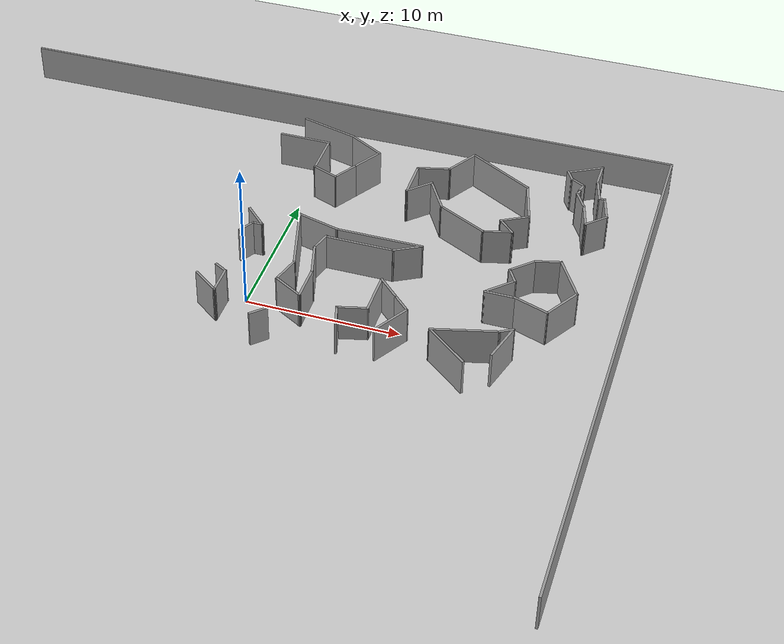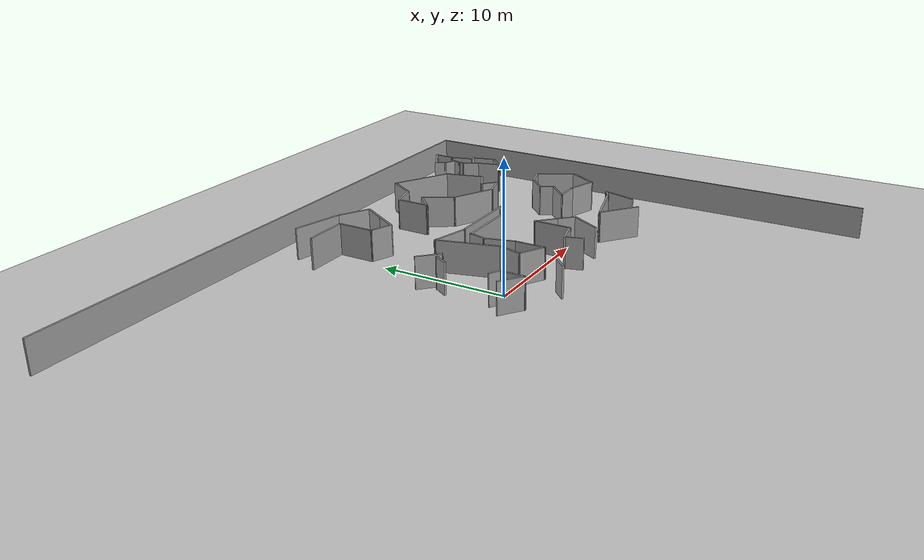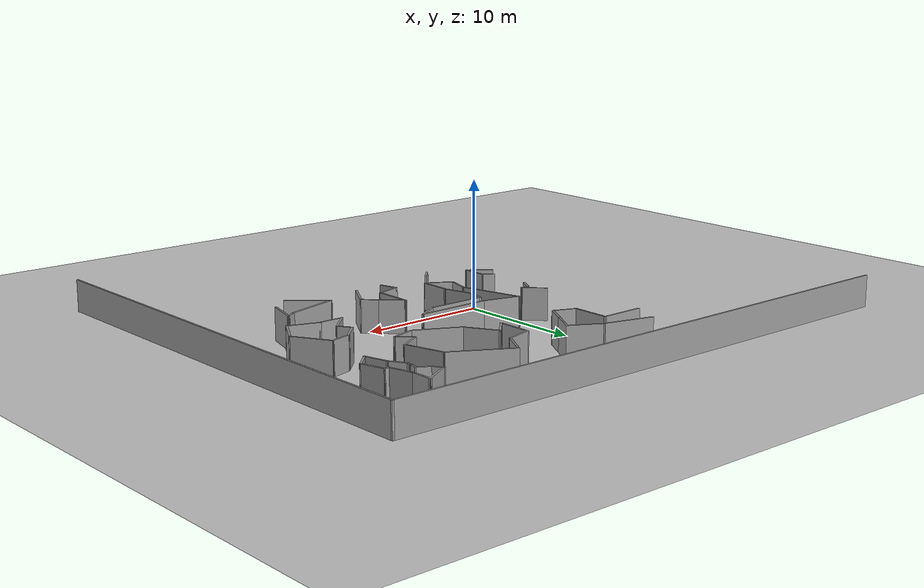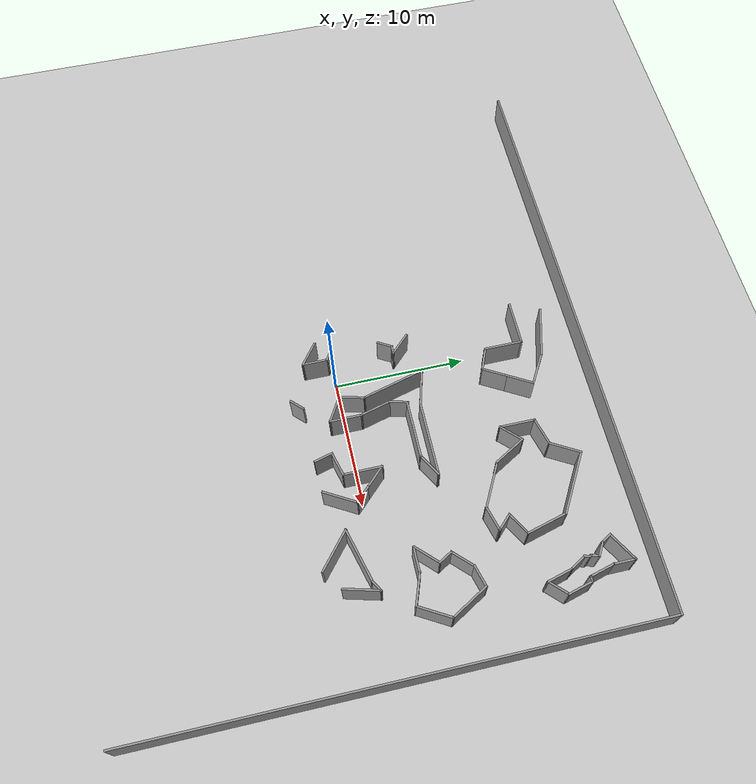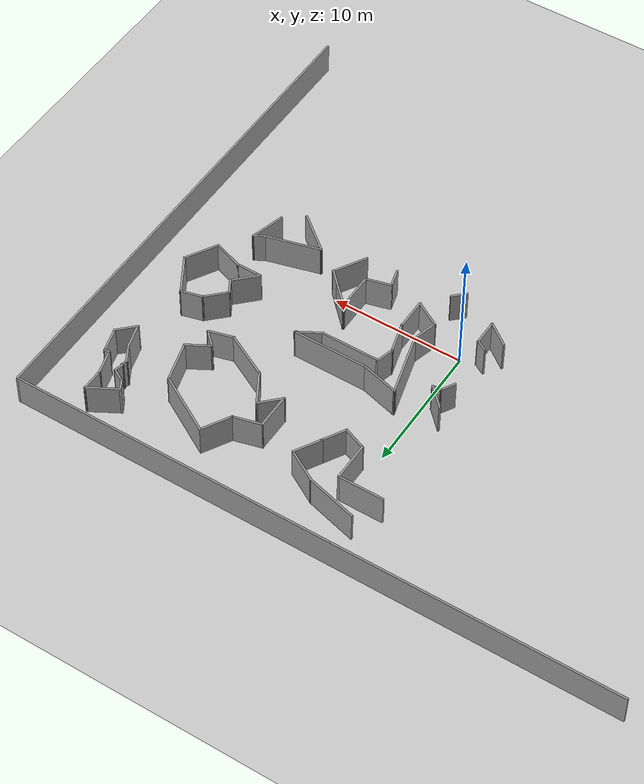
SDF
<sdf version="1.6">
 <world name="default">
  <model name="ground_plane">
   <static>1</static>
   <link name="link">
    <collision name="collision">
     <geometry><plane><normal>0 0 1</normal><size>100 100</size></plane></geometry>
     <surface><friction><ode><mu>100</mu><mu2>50</mu2></ode></friction></surface>
    </collision>
    <visual name="visual">
     <cast_shadows>0</cast_shadows>
     <geometry><plane><normal>0 0 1</normal><size>100 100</size></plane></geometry>
     <material>
      <script><uri>file://media/materials/scripts/gazebo.material</uri><name>Gazebo/Grey</name></script>
     </material>
    </visual>
   </link>
  </model>
  <model name="square_1">
   <pose>0.009703 -0.009719 0 0 -0 0</pose>
   <link name="Wall_0">
    <collision name="Wall_0_Collision">
     <geometry><box><size>2 0.15 2.5</size></box></geometry>
     <pose>0 0 1.25 0 -0 0</pose>
    </collision>
    <visual name="Wall_0_Visual">
     <pose>0 0 1.25 0 -0 0</pose>
     <geometry><box><size>2 0.15 2.5</size></box></geometry>
     <material>
      <script><uri>file://media/materials/scripts/gazebo.material</uri><name>Gazebo/Grey</name></script>
      <ambient>1 1 1 1</ambient>
     </material>
     <meta><layer>0</layer></meta>
    </visual>
    <pose>-1.15789 -1.26056 0 0 -0 1.5708</pose>
   </link>
   <link name="Wall_1">
    <collision name="Wall_1_Collision">
     <geometry><box><size>1 0.15 2.5</size></box></geometry>
     <pose>0 0 1.25 0 -0 0</pose>
    </collision>
    <visual name="Wall_1_Visual">
     <pose>0 0 1.25 0 -0 0</pose>
     <geometry><box><size>1 0.15 2.5</size></box></geometry>
     <material>
      <script><uri>file://media/materials/scripts/gazebo.material</uri><name>Gazebo/Grey</name></script>
      <ambient>1 1 1 1</ambient>
     </material>
     <meta><layer>0</layer></meta>
    </visual>
    <pose>-1.52595 -0.123056 0 0 -0 2.61799</pose>
   </link>
   <link name="Wall_100">
    <collision name="Wall_100_Collision">
     <geometry><box><size>2.75 0.15 2.5</size></box></geometry>
     <pose>0 0 1.25 0 -0 0</pose>
    </collision>
    <visual name="Wall_100_Visual">
     <pose>0 0 1.25 0 -0 0</pose>
     <geometry><box><size>2.75 0.15 2.5</size></box></geometry>
     <material>
      <script><uri>file://media/materials/scripts/gazebo.material</uri><name>Gazebo/Grey</name></script>
      <ambient>1 1 1 1</ambient>
     </material>
     <meta><layer>0</layer></meta>
    </visual>
    <pose>3.07498 15.0231 0 0 0 -0.523599</pose>
   </link>
   <link name="Wall_101">
    <collision name="Wall_101_Collision">
     <geometry><box><size>2.25 0.15 2.5</size></box></geometry>
     <pose>0 0 1.25 0 -0 0</pose>
    </collision>
    <visual name="Wall_101_Visual">
     <pose>0 0 1.25 0 -0 0</pose>
     <geometry><box><size>2.25 0.15 2.5</size></box></geometry>
     <material>
      <script><uri>file://media/materials/scripts/gazebo.material</uri><name>Gazebo/Grey</name></script>
      <ambient>1 1 1 1</ambient>
     </material>
     <meta><layer>0</layer></meta>
    </visual>
    <pose>3.67582 13.4637 0 0 0 -2.0944</pose>
   </link>
   <link name="Wall_102">
    <collision name="Wall_102_Collision">
     <geometry><box><size>2 0.15 2.5</size></box></geometry>
     <pose>0 0 1.25 0 -0 0</pose>
    </collision>
    <visual name="Wall_102_Visual">
     <pose>0 0 1.25 0 -0 0</pose>
     <geometry><box><size>2 0.15 2.5</size></box></geometry>
     <material>
      <script><uri>file://media/materials/scripts/gazebo.material</uri><name>Gazebo/Grey</name></script>
      <ambient>1 1 1 1</ambient>
     </material>
     <meta><layer>0</layer></meta>
    </visual>
    <pose>2.68831 11.7533 0 0 0 -2.0944</pose>
   </link>
   <link name="Wall_103">
    <collision name="Wall_103_Collision">
     <geometry><box><size>1.902 0.15 2.5</size></box></geometry>
     <pose>0 0 1.25 0 -0 0</pose>
    </collision>
    <visual name="Wall_103_Visual">
     <pose>0 0 1.25 0 -0 0</pose>
     <geometry><box><size>1.902 0.15 2.5</size></box></geometry>
     <material>
      <script><uri>file://media/materials/scripts/gazebo.material</uri><name>Gazebo/Grey</name></script>
      <ambient>1 1 1 1</ambient>
     </material>
     <meta><layer>0</layer></meta>
    </visual>
    <pose>1.4144 11.2824 0 0 -0 2.75519</pose>
   </link>
   <link name="Wall_151">
    <collision name="Wall_151_Collision">
     <geometry><box><size>2.75 0.15 2.5</size></box></geometry>
     <pose>0 0 1.25 0 -0 0</pose>
    </collision>
    <visual name="Wall_151_Visual">
     <pose>0 0 1.25 0 -0 0</pose>
     <geometry><box><size>2.75 0.15 2.5</size></box></geometry>
     <material>
      <script><uri>file://media/materials/scripts/gazebo.material</uri><name>Gazebo/Grey</name></script>
      <ambient>1 1 1 1</ambient>
     </material>
     <meta><layer>0</layer></meta>
    </visual>
    <pose>9.09595 11.1606 0 0 -0 2.0944</pose>
   </link>
   <link name="Wall_152">
    <collision name="Wall_152_Collision">
     <geometry><box><size>2 0.15 2.5</size></box></geometry>
     <pose>0 0 1.25 0 -0 0</pose>
    </collision>
    <visual name="Wall_152_Visual">
     <pose>0 0 1.25 0 -0 0</pose>
     <geometry><box><size>2 0.15 2.5</size></box></geometry>
     <material>
      <script><uri>file://media/materials/scripts/gazebo.material</uri><name>Gazebo/Grey</name></script>
      <ambient>1 1 1 1</ambient>
     </material>
     <meta><layer>0</layer></meta>
    </visual>
    <pose>7.79188 11.6323 0 0 0 -2.35619</pose>
   </link>
   <link name="Wall_153">
    <collision name="Wall_153_Collision">
     <geometry><box><size>2.75 0.15 2.5</size></box></geometry>
     <pose>0 0 1.25 0 -0 0</pose>
    </collision>
    <visual name="Wall_153_Visual">
     <pose>0 0 1.25 0 -0 0</pose>
     <geometry><box><size>2.75 0.15 2.5</size></box></geometry>
     <material>
      <script><uri>file://media/materials/scripts/gazebo.material</uri><name>Gazebo/Grey</name></script>
      <ambient>1 1 1 1</ambient>
     </material>
     <meta><layer>0</layer></meta>
    </visual>
    <pose>7.1378 12.2783 0 0 -0 1.5708</pose>
   </link>
   <link name="Wall_154">
    <collision name="Wall_154_Collision">
     <geometry><box><size>2.25 0.15 2.5</size></box></geometry>
     <pose>0 0 1.25 0 -0 0</pose>
    </collision>
    <visual name="Wall_154_Visual">
     <pose>0 0 1.25 0 -0 0</pose>
     <geometry><box><size>2.25 0.15 2.5</size></box></geometry>
     <material>
      <script><uri>file://media/materials/scripts/gazebo.material</uri><name>Gazebo/Grey</name></script>
      <ambient>1 1 1 1</ambient>
     </material>
     <meta><layer>0</layer></meta>
    </visual>
    <pose>8.15203 13.85 0 0 -0 0.261799</pose>
   </link>
   <link name="Wall_155">
    <collision name="Wall_155_Collision">
     <geometry><box><size>2.5 0.15 2.5</size></box></geometry>
     <pose>0 0 1.25 0 -0 0</pose>
    </collision>
    <visual name="Wall_155_Visual">
     <pose>0 0 1.25 0 -0 0</pose>
     <geometry><box><size>2.5 0.15 2.5</size></box></geometry>
     <material>
      <script><uri>file://media/materials/scripts/gazebo.material</uri><name>Gazebo/Grey</name></script>
      <ambient>1 1 1 1</ambient>
     </material>
     <meta><layer>0</layer></meta>
    </visual>
    <pose>9.75375 15.1394 0 0 -0 1.0472</pose>
   </link>
   <link name="Wall_156">
    <collision name="Wall_156_Collision">
     <geometry><box><size>5 0.15 2.5</size></box></geometry>
     <pose>0 0 1.25 0 -0 0</pose>
    </collision>
    <visual name="Wall_156_Visual">
     <pose>0 0 1.25 0 -0 0</pose>
     <geometry><box><size>5 0.15 2.5</size></box></geometry>
     <material>
      <script><uri>file://media/materials/scripts/gazebo.material</uri><name>Gazebo/Grey</name></script>
      <ambient>1 1 1 1</ambient>
     </material>
     <meta><layer>0</layer></meta>
    </visual>
    <pose>12.4414 14.9445 0 0 0 -0.523599</pose>
   </link>
   <link name="Wall_157">
    <collision name="Wall_157_Collision">
     <geometry><box><size>3.25 0.15 2.5</size></box></geometry>
     <pose>0 0 1.25 0 -0 0</pose>
    </collision>
    <visual name="Wall_157_Visual">
     <pose>0 0 1.25 0 -0 0</pose>
     <geometry><box><size>3.25 0.15 2.5</size></box></geometry>
     <material>
      <script><uri>file://media/materials/scripts/gazebo.material</uri><name>Gazebo/Grey</name></script>
      <ambient>1 1 1 1</ambient>
     </material>
     <meta><layer>0</layer></meta>
    </visual>
    <pose>14.9426 12.2348 0 0 0 -1.309</pose>
   </link>
   <link name="Wall_158">
    <collision name="Wall_158_Collision">
     <geometry><box><size>2 0.15 2.5</size></box></geometry>
     <pose>0 0 1.25 0 -0 0</pose>
    </collision>
    <visual name="Wall_158_Visual">
     <pose>0 0 1.25 0 -0 0</pose>
     <geometry><box><size>2 0.15 2.5</size></box></geometry>
     <material>
      <script><uri>file://media/materials/scripts/gazebo.material</uri><name>Gazebo/Grey</name></script>
      <ambient>1 1 1 1</ambient>
     </material>
     <meta><layer>0</layer></meta>
    </visual>
    <pose>14.5427 10.2751 0 0 0 -2.61799</pose>
   </link>
   <link name="Wall_159">
    <collision name="Wall_159_Collision">
     <geometry><box><size>1.5 0.15 2.5</size></box></geometry>
     <pose>0 0 1.25 0 -0 0</pose>
    </collision>
    <visual name="Wall_159_Visual">
     <pose>0 0 1.25 0 -0 0</pose>
     <geometry><box><size>1.5 0.15 2.5</size></box></geometry>
     <material>
      <script><uri>file://media/materials/scripts/gazebo.material</uri><name>Gazebo/Grey</name></script>
      <ambient>1 1 1 1</ambient>
     </material>
     <meta><layer>0</layer></meta>
    </visual>
    <pose>14.219 9.33529 0 0 0 -0.785398</pose>
   </link>
   <link name="Wall_160">
    <collision name="Wall_160_Collision">
     <geometry><box><size>2 0.15 2.5</size></box></geometry>
     <pose>0 0 1.25 0 -0 0</pose>
    </collision>
    <visual name="Wall_160_Visual">
     <pose>0 0 1.25 0 -0 0</pose>
     <geometry><box><size>2 0.15 2.5</size></box></geometry>
     <material>
      <script><uri>file://media/materials/scripts/gazebo.material</uri><name>Gazebo/Grey</name></script>
      <ambient>1 1 1 1</ambient>
     </material>
     <meta><layer>0</layer></meta>
    </visual>
    <pose>13.8028 8.61858 0 0 0 -2.87979</pose>
   </link>
   <link name="Wall_161">
    <collision name="Wall_161_Collision">
     <geometry><box><size>3.72039 0.15 2.5</size></box></geometry>
     <pose>0 0 1.25 0 -0 0</pose>
    </collision>
    <visual name="Wall_161_Visual">
     <pose>0 0 1.25 0 -0 0</pose>
     <geometry><box><size>3.72039 0.15 2.5</size></box></geometry>
     <material>
      <script><uri>file://media/materials/scripts/gazebo.material</uri><name>Gazebo/Grey</name></script>
      <ambient>1 1 1 1</ambient>
     </material>
     <meta><layer>0</layer></meta>
    </visual>
    <pose>11.3276 9.20696 0 0 -0 2.65943</pose>
   </link>
   <link name="Wall_163">
    <collision name="Wall_163_Collision">
     <geometry><box><size>2.25 0.15 2.5</size></box></geometry>
     <pose>0 0 1.25 0 -0 0</pose>
    </collision>
    <visual name="Wall_163_Visual">
     <pose>0 0 1.25 0 -0 0</pose>
     <geometry><box><size>2.25 0.15 2.5</size></box></geometry>
     <material>
      <script><uri>file://media/materials/scripts/gazebo.material</uri><name>Gazebo/Grey</name></script>
      <ambient>1 1 1 1</ambient>
     </material>
     <meta><layer>0</layer></meta>
    </visual>
    <pose>15.2622 3.49521 0 0 -0 0.785398</pose>
   </link>
   <link name="Wall_164">
    <collision name="Wall_164_Collision">
     <geometry><box><size>1.25 0.15 2.5</size></box></geometry>
     <pose>0 0 1.25 0 -0 0</pose>
    </collision>
    <visual name="Wall_164_Visual">
     <pose>0 0 1.25 0 -0 0</pose>
     <geometry><box><size>1.25 0.15 2.5</size></box></geometry>
     <material>
      <script><uri>file://media/materials/scripts/gazebo.material</uri><name>Gazebo/Grey</name></script>
      <ambient>1 1 1 1</ambient>
     </material>
     <meta><layer>0</layer></meta>
    </visual>
    <pose>15.7296 4.71399 0 0 -0 2.0944</pose>
   </link>
   <link name="Wall_165">
    <collision name="Wall_165_Collision">
     <geometry><box><size>2 0.15 2.5</size></box></geometry>
     <pose>0 0 1.25 0 -0 0</pose>
    </collision>
    <visual name="Wall_165_Visual">
     <pose>0 0 1.25 0 -0 0</pose>
     <geometry><box><size>2 0.15 2.5</size></box></geometry>
     <material>
      <script><uri>file://media/materials/scripts/gazebo.material</uri><name>Gazebo/Grey</name></script>
      <ambient>1 1 1 1</ambient>
     </material>
     <meta><layer>0</layer></meta>
    </visual>
    <pose>16.1087 5.84438 0 0 -0 0.785398</pose>
   </link>
   <link name="Wall_166">
    <collision name="Wall_166_Collision">
     <geometry><box><size>1.75 0.15 2.5</size></box></geometry>
     <pose>0 0 1.25 0 -0 0</pose>
    </collision>
    <visual name="Wall_166_Visual">
     <pose>0 0 1.25 0 -0 0</pose>
     <geometry><box><size>1.75 0.15 2.5</size></box></geometry>
     <material>
      <script><uri>file://media/materials/scripts/gazebo.material</uri><name>Gazebo/Grey</name></script>
      <ambient>1 1 1 1</ambient>
     </material>
     <meta><layer>0</layer></meta>
    </visual>
    <pose>17.5355 6.7055 0 0 -0 0.261799</pose>
   </link>
   <link name="Wall_167">
    <collision name="Wall_167_Collision">
     <geometry><box><size>3.25 0.15 2.5</size></box></geometry>
     <pose>0 0 1.25 0 -0 0</pose>
    </collision>
    <visual name="Wall_167_Visual">
     <pose>0 0 1.25 0 -0 0</pose>
     <geometry><box><size>3.25 0.15 2.5</size></box></geometry>
     <material>
      <script><uri>file://media/materials/scripts/gazebo.material</uri><name>Gazebo/Grey</name></script>
      <ambient>1 1 1 1</ambient>
     </material>
     <meta><layer>0</layer></meta>
    </visual>
    <pose>19.0833 5.57022 0 0 0 -1.0472</pose>
   </link>
   <link name="Wall_168">
    <collision name="Wall_168_Collision">
     <geometry><box><size>2.75 0.15 2.5</size></box></geometry>
     <pose>0 0 1.25 0 -0 0</pose>
    </collision>
    <visual name="Wall_168_Visual">
     <pose>0 0 1.25 0 -0 0</pose>
     <geometry><box><size>2.75 0.15 2.5</size></box></geometry>
     <material>
      <script><uri>file://media/materials/scripts/gazebo.material</uri><name>Gazebo/Grey</name></script>
      <ambient>1 1 1 1</ambient>
     </material>
     <meta><layer>0</layer></meta>
    </visual>
    <pose>19.2083 3.10205 0 0 0 -2.0944</pose>
   </link>
   <link name="Wall_169">
    <collision name="Wall_169_Collision">
     <geometry><box><size>2.48434 0.15 2.5</size></box></geometry>
     <pose>0 0 1.25 0 -0 0</pose>
    </collision>
    <visual name="Wall_169_Visual">
     <pose>0 0 1.25 0 -0 0</pose>
     <geometry><box><size>2.48434 0.15 2.5</size></box></geometry>
     <material>
      <script><uri>file://media/materials/scripts/gazebo.material</uri><name>Gazebo/Grey</name></script>
      <ambient>1 1 1 1</ambient>
     </material>
     <meta><layer>0</layer></meta>
    </visual>
    <pose>17.4563 2.36092 0 0 -0 2.8057</pose>
   </link>
   <link name="Wall_170">
    <collision name="Wall_170_Collision">
     <geometry><box><size>1.96502 0.15 2.5</size></box></geometry>
     <pose>0 0 1.25 0 -0 0</pose>
    </collision>
    <visual name="Wall_170_Visual">
     <pose>0 0 1.25 0 -0 0</pose>
     <geometry><box><size>1.96502 0.15 2.5</size></box></geometry>
     <material>
      <script><uri>file://media/materials/scripts/gazebo.material</uri><name>Gazebo/Grey</name></script>
      <ambient>1 1 1 1</ambient>
     </material>
     <meta><layer>0</layer></meta>
    </visual>
    <pose>15.4469 2.72814 0 0 -0 3.14159</pose>
   </link>
   <link name="Wall_175">
    <collision name="Wall_175_Collision">
     <geometry><box><size>4.25 0.15 2.5</size></box></geometry>
     <pose>0 0 1.25 0 -0 0</pose>
    </collision>
    <visual name="Wall_175_Visual">
     <pose>0 0 1.25 0 -0 0</pose>
     <geometry><box><size>4.25 0.15 2.5</size></box></geometry>
     <material>
      <script><uri>file://media/materials/scripts/gazebo.material</uri><name>Gazebo/Grey</name></script>
      <ambient>1 1 1 1</ambient>
     </material>
     <meta><layer>0</layer></meta>
    </visual>
    <pose>14.268 -1.06871 0 0 -0 0.261799</pose>
   </link>
   <link name="Wall_176">
    <collision name="Wall_176_Collision">
     <geometry><box><size>1 0.15 2.5</size></box></geometry>
     <pose>0 0 1.25 0 -0 0</pose>
    </collision>
    <visual name="Wall_176_Visual">
     <pose>0 0 1.25 0 -0 0</pose>
     <geometry><box><size>1 0.15 2.5</size></box></geometry>
     <material>
      <script><uri>file://media/materials/scripts/gazebo.material</uri><name>Gazebo/Grey</name></script>
      <ambient>1 1 1 1</ambient>
     </material>
     <meta><layer>0</layer></meta>
    </visual>
    <pose>16.6162 -0.325631 0 0 -0 0.523599</pose>
   </link>
   <link name="Wall_177">
    <collision name="Wall_177_Collision">
     <geometry><box><size>2.75 0.15 2.5</size></box></geometry>
     <pose>0 0 1.25 0 -0 0</pose>
    </collision>
    <visual name="Wall_177_Visual">
     <pose>0 0 1.25 0 -0 0</pose>
     <geometry><box><size>2.75 0.15 2.5</size></box></geometry>
     <material>
      <script><uri>file://media/materials/scripts/gazebo.material</uri><name>Gazebo/Grey</name></script>
      <ambient>1 1 1 1</ambient>
     </material>
     <meta><layer>0</layer></meta>
    </visual>
    <pose>16.6478 -1.36884 0 0 0 -1.8326</pose>
   </link>
   <link name="Wall_180">
    <collision name="Wall_180_Collision">
     <geometry><box><size>3.46778 0.15 2.5</size></box></geometry>
     <pose>0 0 1.25 0 -0 0</pose>
    </collision>
    <visual name="Wall_180_Visual">
     <pose>0 0 1.25 0 -0 0</pose>
     <geometry><box><size>3.46778 0.15 2.5</size></box></geometry>
     <material>
      <script><uri>file://media/materials/scripts/gazebo.material</uri><name>Gazebo/Grey</name></script>
      <ambient>1 1 1 1</ambient>
     </material>
     <meta><layer>0</layer></meta>
    </visual>
    <pose>13.5685 -2.65367 0 0 -0 2.45282</pose>
   </link>
   <link name="Wall_245">
    <collision name="Wall_245_Collision">
     <geometry><box><size>38.5 0.15 2.5</size></box></geometry>
     <pose>0 0 1.25 0 -0 0</pose>
    </collision>
    <visual name="Wall_245_Visual">
     <pose>0 0 1.25 0 -0 0</pose>
     <geometry><box><size>38.5 0.15 2.5</size></box></geometry>
     <material>
      <script><uri>file://media/materials/scripts/gazebo.material</uri><name>Gazebo/Grey</name></script>
      <ambient>1 1 1 1</ambient>
     </material>
     <meta><layer>0</layer></meta>
    </visual>
    <pose>23.05 1e-06 0 0 -0 1.5708</pose>
   </link>
   <link name="Wall_246">
    <collision name="Wall_246_Collision">
     <geometry><box><size>46.25 0.15 2.5</size></box></geometry>
     <pose>0 0 1.25 0 -0 0</pose>
    </collision>
    <visual name="Wall_246_Visual">
     <pose>0 0 1.25 0 -0 0</pose>
     <geometry><box><size>46.25 0.15 2.5</size></box></geometry>
     <material>
      <script><uri>file://media/materials/scripts/gazebo.material</uri><name>Gazebo/Grey</name></script>
      <ambient>1 1 1 1</ambient>
     </material>
     <meta><layer>0</layer></meta>
    </visual>
    <pose>1e-06 19.175 0 0 -0 3.14159</pose>
   </link>
   <link name="Wall_288">
    <collision name="Wall_288_Collision">
     <geometry><box><size>2.5 0.15 2.5</size></box></geometry>
     <pose>0 0 1.25 0 -0 0</pose>
    </collision>
    <visual name="Wall_288_Visual">
     <pose>0 0 1.25 0 -0 0</pose>
     <geometry><box><size>2.5 0.15 2.5</size></box></geometry>
     <material>
      <script><uri>file://media/materials/scripts/gazebo.material</uri><name>Gazebo/Grey</name></script>
      <ambient>1 1 1 1</ambient>
     </material>
     <meta><layer>0</layer></meta>
    </visual>
    <pose>17.7393 16.8257 0 0 -0 0.523599</pose>
   </link>
   <link name="Wall_289">
    <collision name="Wall_289_Collision">
     <geometry><box><size>1.75 0.15 2.5</size></box></geometry>
     <pose>0 0 1.25 0 -0 0</pose>
    </collision>
    <visual name="Wall_289_Visual">
     <pose>0 0 1.25 0 -0 0</pose>
     <geometry><box><size>1.75 0.15 2.5</size></box></geometry>
     <material>
      <script><uri>file://media/materials/scripts/gazebo.material</uri><name>Gazebo/Grey</name></script>
      <ambient>1 1 1 1</ambient>
     </material>
     <meta><layer>0</layer></meta>
    </visual>
    <pose>18.7568 16.6132 0 0 0 -1.5708</pose>
   </link>
   <link name="Wall_290">
    <collision name="Wall_290_Collision">
     <geometry><box><size>2 0.15 2.5</size></box></geometry>
     <pose>0 0 1.25 0 -0 0</pose>
    </collision>
    <visual name="Wall_290_Visual">
     <pose>0 0 1.25 0 -0 0</pose>
     <geometry><box><size>2 0.15 2.5</size></box></geometry>
     <material>
      <script><uri>file://media/materials/scripts/gazebo.material</uri><name>Gazebo/Grey</name></script>
      <ambient>1 1 1 1</ambient>
     </material>
     <meta><layer>0</layer></meta>
    </visual>
    <pose>18.9962 14.9197 0 0 0 -1.309</pose>
   </link>
   <link name="Wall_291">
    <collision name="Wall_291_Collision">
     <geometry><box><size>0.5 0.15 2.5</size></box></geometry>
     <pose>0 0 1.25 0 -0 0</pose>
    </collision>
    <visual name="Wall_291_Visual">
     <pose>0 0 1.25 0 -0 0</pose>
     <geometry><box><size>0.5 0.15 2.5</size></box></geometry>
     <material>
      <script><uri>file://media/materials/scripts/gazebo.material</uri><name>Gazebo/Grey</name></script>
      <ambient>1 1 1 1</ambient>
     </material>
     <meta><layer>0</layer></meta>
    </visual>
    <pose>19.4106 14.0263 0 0 -0 0</pose>
   </link>
   <link name="Wall_292">
    <collision name="Wall_292_Collision">
     <geometry><box><size>2 0.15 2.5</size></box></geometry>
     <pose>0 0 1.25 0 -0 0</pose>
    </collision>
    <visual name="Wall_292_Visual">
     <pose>0 0 1.25 0 -0 0</pose>
     <geometry><box><size>2 0.15 2.5</size></box></geometry>
     <material>
      <script><uri>file://media/materials/scripts/gazebo.material</uri><name>Gazebo/Grey</name></script>
      <ambient>1 1 1 1</ambient>
     </material>
     <meta><layer>0</layer></meta>
    </visual>
    <pose>19.8251 13.1328 0 0 0 -1.309</pose>
   </link>
   <link name="Wall_293">
    <collision name="Wall_293_Collision">
     <geometry><box><size>1.75 0.15 2.5</size></box></geometry>
     <pose>0 0 1.25 0 -0 0</pose>
    </collision>
    <visual name="Wall_293_Visual">
     <pose>0 0 1.25 0 -0 0</pose>
     <geometry><box><size>1.75 0.15 2.5</size></box></geometry>
     <material>
      <script><uri>file://media/materials/scripts/gazebo.material</uri><name>Gazebo/Grey</name></script>
      <ambient>1 1 1 1</ambient>
     </material>
     <meta><layer>0</layer></meta>
    </visual>
    <pose>19.4988 11.6736 0 0 0 -2.35619</pose>
   </link>
   <link name="Wall_294">
    <collision name="Wall_294_Collision">
     <geometry><box><size>2 0.15 2.5</size></box></geometry>
     <pose>0 0 1.25 0 -0 0</pose>
    </collision>
    <visual name="Wall_294_Visual">
     <pose>0 0 1.25 0 -0 0</pose>
     <geometry><box><size>2 0.15 2.5</size></box></geometry>
     <material>
      <script><uri>file://media/materials/scripts/gazebo.material</uri><name>Gazebo/Grey</name></script>
      <ambient>1 1 1 1</ambient>
     </material>
     <meta><layer>0</layer></meta>
    </visual>
    <pose>18.6937 12.0014 0 0 -0 1.8326</pose>
   </link>
   <link name="Wall_295">
    <collision name="Wall_295_Collision">
     <geometry><box><size>1.5 0.15 2.5</size></box></geometry>
     <pose>0 0 1.25 0 -0 0</pose>
    </collision>
    <visual name="Wall_295_Visual">
     <pose>0 0 1.25 0 -0 0</pose>
     <geometry><box><size>1.5 0.15 2.5</size></box></geometry>
     <material>
      <script><uri>file://media/materials/scripts/gazebo.material</uri><name>Gazebo/Grey</name></script>
      <ambient>1 1 1 1</ambient>
     </material>
     <meta><layer>0</layer></meta>
    </visual>
    <pose>18.1168 13.4795 0 0 -0 2.0944</pose>
   </link>
   <link name="Wall_296">
    <collision name="Wall_296_Collision">
     <geometry><box><size>0.5 0.15 2.5</size></box></geometry>
     <pose>0 0 1.25 0 -0 0</pose>
    </collision>
    <visual name="Wall_296_Visual">
     <pose>0 0 1.25 0 -0 0</pose>
     <geometry><box><size>0.5 0.15 2.5</size></box></geometry>
     <material>
      <script><uri>file://media/materials/scripts/gazebo.material</uri><name>Gazebo/Grey</name></script>
      <ambient>1 1 1 1</ambient>
     </material>
     <meta><layer>0</layer></meta>
    </visual>
    <pose>17.8246 14.2331 0 0 -0 1.309</pose>
   </link>
   <link name="Wall_297">
    <collision name="Wall_297_Collision">
     <geometry><box><size>0.25 0.15 2.5</size></box></geometry>
     <pose>0 0 1.25 0 -0 0</pose>
    </collision>
    <visual name="Wall_297_Visual">
     <pose>0 0 1.25 0 -0 0</pose>
     <geometry><box><size>0.25 0.15 2.5</size></box></geometry>
     <material>
      <script><uri>file://media/materials/scripts/gazebo.material</uri><name>Gazebo/Grey</name></script>
      <ambient>1 1 1 1</ambient>
     </material>
     <meta><layer>0</layer></meta>
    </visual>
    <pose>17.8449 14.4454 0 0 -0 2.0944</pose>
   </link>
   <link name="Wall_298">
    <collision name="Wall_298_Collision">
     <geometry><box><size>0.75 0.15 2.5</size></box></geometry>
     <pose>0 0 1.25 0 -0 0</pose>
    </collision>
    <visual name="Wall_298_Visual">
     <pose>0 0 1.25 0 -0 0</pose>
     <geometry><box><size>0.75 0.15 2.5</size></box></geometry>
     <material>
      <script><uri>file://media/materials/scripts/gazebo.material</uri><name>Gazebo/Grey</name></script>
      <ambient>1 1 1 1</ambient>
     </material>
     <meta><layer>0</layer></meta>
    </visual>
    <pose>17.8975 14.7785 0 0 -0 1.309</pose>
   </link>
   <link name="Wall_299">
    <collision name="Wall_299_Collision">
     <geometry><box><size>1.13237 0.15 2.5</size></box></geometry>
     <pose>0 0 1.25 0 -0 0</pose>
    </collision>
    <visual name="Wall_299_Visual">
     <pose>0 0 1.25 0 -0 0</pose>
     <geometry><box><size>1.13237 0.15 2.5</size></box></geometry>
     <material>
      <script><uri>file://media/materials/scripts/gazebo.material</uri><name>Gazebo/Grey</name></script>
      <ambient>1 1 1 1</ambient>
     </material>
     <meta><layer>0</layer></meta>
    </visual>
    <pose>17.5502 15.3145 0 0 -0 2.61645</pose>
   </link>
   <link name="Wall_300">
    <collision name="Wall_300_Collision">
     <geometry><box><size>1 0.15 2.5</size></box></geometry>
     <pose>0 0 1.25 0 -0 0</pose>
    </collision>
    <visual name="Wall_300_Visual">
     <pose>0 0 1.25 0 -0 0</pose>
     <geometry><box><size>1 0.15 2.5</size></box></geometry>
     <material>
      <script><uri>file://media/materials/scripts/gazebo.material</uri><name>Gazebo/Grey</name></script>
      <ambient>1 1 1 1</ambient>
     </material>
     <meta><layer>0</layer></meta>
    </visual>
    <pose>16.9127 15.8936 0 0 -0 2.0944</pose>
   </link>
   <link name="Wall_4">
    <collision name="Wall_4_Collision">
     <geometry><box><size>2.12393 0.15 2.5</size></box></geometry>
     <pose>0 0 1.25 0 -0 0</pose>
    </collision>
    <visual name="Wall_4_Visual">
     <pose>0 0 1.25 0 -0 0</pose>
     <geometry><box><size>2.12393 0.15 2.5</size></box></geometry>
     <material>
      <script><uri>file://media/materials/scripts/gazebo.material</uri><name>Gazebo/Grey</name></script>
      <ambient>1 1 1 1</ambient>
     </material>
     <meta><layer>0</layer></meta>
    </visual>
    <pose>-1.95095 -1.59806 0 0 0 -0.637588</pose>
   </link>
   <link name="Wall_57">
    <collision name="Wall_57_Collision">
     <geometry><box><size>2 0.15 2.5</size></box></geometry>
     <pose>0 0 1.25 0 -0 0</pose>
    </collision>
    <visual name="Wall_57_Visual">
     <pose>0 0 1.25 0 -0 0</pose>
     <geometry><box><size>2 0.15 2.5</size></box></geometry>
     <material>
      <script><uri>file://media/materials/scripts/gazebo.material</uri><name>Gazebo/Grey</name></script>
      <ambient>1 1 1 1</ambient>
     </material>
     <meta><layer>0</layer></meta>
    </visual>
    <pose>-1.25569 5.34336 0 0 0 -0.785398</pose>
   </link>
   <link name="Wall_58">
    <collision name="Wall_58_Collision">
     <geometry><box><size>0.75 0.15 2.5</size></box></geometry>
     <pose>0 0 1.25 0 -0 0</pose>
    </collision>
    <visual name="Wall_58_Visual">
     <pose>0 0 1.25 0 -0 0</pose>
     <geometry><box><size>0.75 0.15 2.5</size></box></geometry>
     <material>
      <script><uri>file://media/materials/scripts/gazebo.material</uri><name>Gazebo/Grey</name></script>
      <ambient>1 1 1 1</ambient>
     </material>
     <meta><layer>0</layer></meta>
    </visual>
    <pose>-0.901614 4.68929 0 0 -0 3.14159</pose>
   </link>
   <link name="Wall_59">
    <collision name="Wall_59_Collision">
     <geometry><box><size>1.25 0.15 2.5</size></box></geometry>
     <pose>0 0 1.25 0 -0 0</pose>
    </collision>
    <visual name="Wall_59_Visual">
     <pose>0 0 1.25 0 -0 0</pose>
     <geometry><box><size>1.25 0.15 2.5</size></box></geometry>
     <material>
      <script><uri>file://media/materials/scripts/gazebo.material</uri><name>Gazebo/Grey</name></script>
      <ambient>1 1 1 1</ambient>
     </material>
     <meta><layer>0</layer></meta>
    </visual>
    <pose>-1.47661 4.21297 0 0 0 -2.0944</pose>
   </link>
   <link name="Wall_6">
    <collision name="Wall_6_Collision">
     <geometry><box><size>1.25 0.15 2.5</size></box></geometry>
     <pose>0 0 1.25 0 -0 0</pose>
    </collision>
    <visual name="Wall_6_Visual">
     <pose>0 0 1.25 0 -0 0</pose>
     <geometry><box><size>1.25 0.15 2.5</size></box></geometry>
     <material>
      <script><uri>file://media/materials/scripts/gazebo.material</uri><name>Gazebo/Grey</name></script>
      <ambient>1 1 1 1</ambient>
     </material>
     <meta><layer>0</layer></meta>
    </visual>
    <pose>2.05616 -3.2216 0 0 0 -2.35619</pose>
   </link>
   <link name="Wall_73">
    <collision name="Wall_73_Collision">
     <geometry><box><size>1.5 0.15 2.5</size></box></geometry>
     <pose>0 0 1.25 0 -0 0</pose>
    </collision>
    <visual name="Wall_73_Visual">
     <pose>0 0 1.25 0 -0 0</pose>
     <geometry><box><size>1.5 0.15 2.5</size></box></geometry>
     <material>
      <script><uri>file://media/materials/scripts/gazebo.material</uri><name>Gazebo/Grey</name></script>
      <ambient>1 1 1 1</ambient>
     </material>
     <meta><layer>0</layer></meta>
    </visual>
    <pose>3.49467 4.19345 0 0 0 -1.8326</pose>
   </link>
   <link name="Wall_74">
    <collision name="Wall_74_Collision">
     <geometry><box><size>2.5 0.15 2.5</size></box></geometry>
     <pose>0 0 1.25 0 -0 0</pose>
    </collision>
    <visual name="Wall_74_Visual">
     <pose>0 0 1.25 0 -0 0</pose>
     <geometry><box><size>2.5 0.15 2.5</size></box></geometry>
     <material>
      <script><uri>file://media/materials/scripts/gazebo.material</uri><name>Gazebo/Grey</name></script>
      <ambient>1 1 1 1</ambient>
     </material>
     <meta><layer>0</layer></meta>
    </visual>
    <pose>3.62408 2.40649 0 0 0 -1.309</pose>
   </link>
   <link name="Wall_75">
    <collision name="Wall_75_Collision">
     <geometry><box><size>2.5 0.15 2.5</size></box></geometry>
     <pose>0 0 1.25 0 -0 0</pose>
    </collision>
    <visual name="Wall_75_Visual">
     <pose>0 0 1.25 0 -0 0</pose>
     <geometry><box><size>2.5 0.15 2.5</size></box></geometry>
     <material>
      <script><uri>file://media/materials/scripts/gazebo.material</uri><name>Gazebo/Grey</name></script>
      <ambient>1 1 1 1</ambient>
     </material>
     <meta><layer>0</layer></meta>
    </visual>
    <pose>3.92819 0.096523 0 0 0 -1.5708</pose>
   </link>
   <link name="Wall_76">
    <collision name="Wall_76_Collision">
     <geometry><box><size>2.25 0.15 2.5</size></box></geometry>
     <pose>0 0 1.25 0 -0 0</pose>
    </collision>
    <visual name="Wall_76_Visual">
     <pose>0 0 1.25 0 -0 0</pose>
     <geometry><box><size>2.25 0.15 2.5</size></box></geometry>
     <material>
      <script><uri>file://media/materials/scripts/gazebo.material</uri><name>Gazebo/Grey</name></script>
      <ambient>1 1 1 1</ambient>
     </material>
     <meta><layer>0</layer></meta>
    </visual>
    <pose>3.01886 -0.553477 0 0 -0 2.61799</pose>
   </link>
   <link name="Wall_77">
    <collision name="Wall_77_Collision">
     <geometry><box><size>2 0.15 2.5</size></box></geometry>
     <pose>0 0 1.25 0 -0 0</pose>
    </collision>
    <visual name="Wall_77_Visual">
     <pose>0 0 1.25 0 -0 0</pose>
     <geometry><box><size>2 0.15 2.5</size></box></geometry>
     <material>
      <script><uri>file://media/materials/scripts/gazebo.material</uri><name>Gazebo/Grey</name></script>
      <ambient>1 1 1 1</ambient>
     </material>
     <meta><layer>0</layer></meta>
    </visual>
    <pose>2.34895 0.865005 0 0 -0 1.309</pose>
   </link>
   <link name="Wall_78">
    <collision name="Wall_78_Collision">
     <geometry><box><size>5 0.15 2.5</size></box></geometry>
     <pose>0 0 1.25 0 -0 0</pose>
    </collision>
    <visual name="Wall_78_Visual">
     <pose>0 0 1.25 0 -0 0</pose>
     <geometry><box><size>5 0.15 2.5</size></box></geometry>
     <material>
      <script><uri>file://media/materials/scripts/gazebo.material</uri><name>Gazebo/Grey</name></script>
      <ambient>1 1 1 1</ambient>
     </material>
     <meta><layer>0</layer></meta>
    </visual>
    <pose>1.96072 4.10086 0 0 -0 1.8326</pose>
   </link>
   <link name="Wall_79">
    <collision name="Wall_79_Collision">
     <geometry><box><size>3 0.15 2.5</size></box></geometry>
     <pose>0 0 1.25 0 -0 0</pose>
    </collision>
    <visual name="Wall_79_Visual">
     <pose>0 0 1.25 0 -0 0</pose>
     <geometry><box><size>3 0.15 2.5</size></box></geometry>
     <material>
      <script><uri>file://media/materials/scripts/gazebo.material</uri><name>Gazebo/Grey</name></script>
      <ambient>1 1 1 1</ambient>
     </material>
     <meta><layer>0</layer></meta>
    </visual>
    <pose>2.70953 6.07441 0 0 0 -0.261799</pose>
   </link>
   <link name="Wall_80">
    <collision name="Wall_80_Collision">
     <geometry><box><size>5.75 0.15 2.5</size></box></geometry>
     <pose>0 0 1.25 0 -0 0</pose>
    </collision>
    <visual name="Wall_80_Visual">
     <pose>0 0 1.25 0 -0 0</pose>
     <geometry><box><size>5.75 0.15 2.5</size></box></geometry>
     <material>
      <script><uri>file://media/materials/scripts/gazebo.material</uri><name>Gazebo/Grey</name></script>
      <ambient>1 1 1 1</ambient>
     </material>
     <meta><layer>0</layer></meta>
    </visual>
    <pose>6.88597 5.70559 0 0 -0 0</pose>
   </link>
   <link name="Wall_81">
    <collision name="Wall_81_Collision">
     <geometry><box><size>2 0.15 2.5</size></box></geometry>
     <pose>0 0 1.25 0 -0 0</pose>
    </collision>
    <visual name="Wall_81_Visual">
     <pose>0 0 1.25 0 -0 0</pose>
     <geometry><box><size>2 0.15 2.5</size></box></geometry>
     <material>
      <script><uri>file://media/materials/scripts/gazebo.material</uri><name>Gazebo/Grey</name></script>
      <ambient>1 1 1 1</ambient>
     </material>
     <meta><layer>0</layer></meta>
    </visual>
    <pose>8.8849 5.24309 0 0 0 -2.61799</pose>
   </link>
   <link name="Wall_82">
    <collision name="Wall_82_Collision">
     <geometry><box><size>4.5 0.15 2.5</size></box></geometry>
     <pose>0 0 1.25 0 -0 0</pose>
    </collision>
    <visual name="Wall_82_Visual">
     <pose>0 0 1.25 0 -0 0</pose>
     <geometry><box><size>4.5 0.15 2.5</size></box></geometry>
     <material>
      <script><uri>file://media/materials/scripts/gazebo.material</uri><name>Gazebo/Grey</name></script>
      <ambient>1 1 1 1</ambient>
     </material>
     <meta><layer>0</layer></meta>
    </visual>
    <pose>5.90882 4.78059 0 0 -0 3.14159</pose>
   </link>
   <link name="Wall_84">
    <collision name="Wall_84_Collision">
     <geometry><box><size>2.75 0.15 2.5</size></box></geometry>
     <pose>0 0 1.25 0 -0 0</pose>
    </collision>
    <visual name="Wall_84_Visual">
     <pose>0 0 1.25 0 -0 0</pose>
     <geometry><box><size>2.75 0.15 2.5</size></box></geometry>
     <material>
      <script><uri>file://media/materials/scripts/gazebo.material</uri><name>Gazebo/Grey</name></script>
      <ambient>1 1 1 1</ambient>
     </material>
     <meta><layer>0</layer></meta>
    </visual>
    <pose>9.84214 -1.5019 0 0 -0 1.0472</pose>
   </link>
   <link name="Wall_85">
    <collision name="Wall_85_Collision">
     <geometry><box><size>1.5 0.15 2.5</size></box></geometry>
     <pose>0 0 1.25 0 -0 0</pose>
    </collision>
    <visual name="Wall_85_Visual">
     <pose>0 0 1.25 0 -0 0</pose>
     <geometry><box><size>1.5 0.15 2.5</size></box></geometry>
     <material>
      <script><uri>file://media/materials/scripts/gazebo.material</uri><name>Gazebo/Grey</name></script>
      <ambient>1 1 1 1</ambient>
     </material>
     <meta><layer>0</layer></meta>
    </visual>
    <pose>10.0148 0.10123 0 0 -0 2.35619</pose>
   </link>
   <link name="Wall_86">
    <collision name="Wall_86_Collision">
     <geometry><box><size>2 0.15 2.5</size></box></geometry>
     <pose>0 0 1.25 0 -0 0</pose>
    </collision>
    <visual name="Wall_86_Visual">
     <pose>0 0 1.25 0 -0 0</pose>
     <geometry><box><size>2 0.15 2.5</size></box></geometry>
     <material>
      <script><uri>file://media/materials/scripts/gazebo.material</uri><name>Gazebo/Grey</name></script>
      <ambient>1 1 1 1</ambient>
     </material>
     <meta><layer>0</layer></meta>
    </visual>
    <pose>8.88347 1.2326 0 0 -0 2.35619</pose>
   </link>
   <link name="Wall_87">
    <collision name="Wall_87_Collision">
     <geometry><box><size>3 0.15 2.5</size></box></geometry>
     <pose>0 0 1.25 0 -0 0</pose>
    </collision>
    <visual name="Wall_87_Visual">
     <pose>0 0 1.25 0 -0 0</pose>
     <geometry><box><size>3 0.15 2.5</size></box></geometry>
     <material>
      <script><uri>file://media/materials/scripts/gazebo.material</uri><name>Gazebo/Grey</name></script>
      <ambient>1 1 1 1</ambient>
     </material>
     <meta><layer>0</layer></meta>
    </visual>
    <pose>8.2294 0.461674 0 0 0 -1.5708</pose>
   </link>
   <link name="Wall_88">
    <collision name="Wall_88_Collision">
     <geometry><box><size>2 0.15 2.5</size></box></geometry>
     <pose>0 0 1.25 0 -0 0</pose>
    </collision>
    <visual name="Wall_88_Visual">
     <pose>0 0 1.25 0 -0 0</pose>
     <geometry><box><size>2 0.15 2.5</size></box></geometry>
     <material>
      <script><uri>file://media/materials/scripts/gazebo.material</uri><name>Gazebo/Grey</name></script>
      <ambient>1 1 1 1</ambient>
     </material>
     <meta><layer>0</layer></meta>
    </visual>
    <pose>7.33591 -1.20273 0 0 0 -2.87979</pose>
   </link>
   <link name="Wall_89">
    <collision name="Wall_89_Collision">
     <geometry><box><size>1.5 0.15 2.5</size></box></geometry>
     <pose>0 0 1.25 0 -0 0</pose>
    </collision>
    <visual name="Wall_89_Visual">
     <pose>0 0 1.25 0 -0 0</pose>
     <geometry><box><size>1.5 0.15 2.5</size></box></geometry>
     <material>
      <script><uri>file://media/materials/scripts/gazebo.material</uri><name>Gazebo/Grey</name></script>
      <ambient>1 1 1 1</ambient>
     </material>
     <meta><layer>0</layer></meta>
    </visual>
    <pose>6.61714 -2.09414 0 0 0 -1.309</pose>
   </link>
   <link name="Wall_93">
    <collision name="Wall_93_Collision">
     <geometry><box><size>3 0.15 2.5</size></box></geometry>
     <pose>0 0 1.25 0 -0 0</pose>
    </collision>
    <visual name="Wall_93_Visual">
     <pose>0 0 1.25 0 -0 0</pose>
     <geometry><box><size>3 0.15 2.5</size></box></geometry>
     <material>
      <script><uri>file://media/materials/scripts/gazebo.material</uri><name>Gazebo/Grey</name></script>
      <ambient>1 1 1 1</ambient>
     </material>
     <meta><layer>0</layer></meta>
    </visual>
    <pose>0.60299 13.0375 0 0 -0 1.5708</pose>
   </link>
   <link name="Wall_94">
    <collision name="Wall_94_Collision">
     <geometry><box><size>3.5 0.15 2.5</size></box></geometry>
     <pose>0 0 1.25 0 -0 0</pose>
    </collision>
    <visual name="Wall_94_Visual">
     <pose>0 0 1.25 0 -0 0</pose>
     <geometry><box><size>3.5 0.15 2.5</size></box></geometry>
     <material>
      <script><uri>file://media/materials/scripts/gazebo.material</uri><name>Gazebo/Grey</name></script>
      <ambient>1 1 1 1</ambient>
     </material>
     <meta><layer>0</layer></meta>
    </visual>
    <pose>-1.07201 14.4625 0 0 -0 3.14159</pose>
   </link>
   <link name="Wall_99">
    <collision name="Wall_99_Collision">
     <geometry><box><size>4 0.15 2.5</size></box></geometry>
     <pose>0 0 1.25 0 -0 0</pose>
    </collision>
    <visual name="Wall_99_Visual">
     <pose>0 0 1.25 0 -0 0</pose>
     <geometry><box><size>4 0.15 2.5</size></box></geometry>
     <material>
      <script><uri>file://media/materials/scripts/gazebo.material</uri><name>Gazebo/Grey</name></script>
      <ambient>1 1 1 1</ambient>
     </material>
     <meta><layer>0</layer></meta>
    </visual>
    <pose>0.089742 16.1713 0 0 0 -0.261799</pose>
   </link>
   <static>1</static>
  </model>
 </world>
</sdf>
